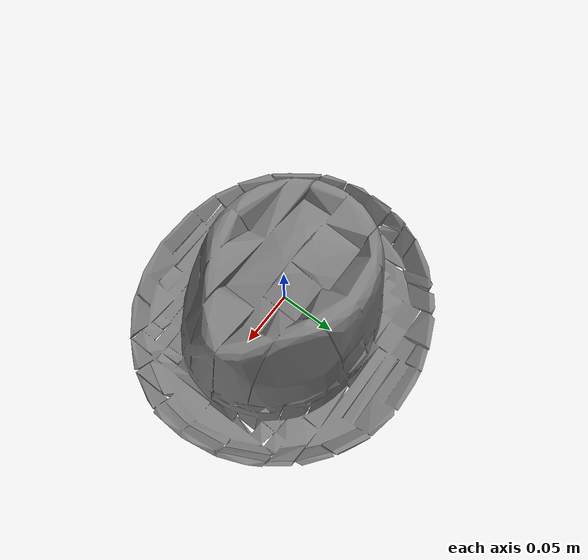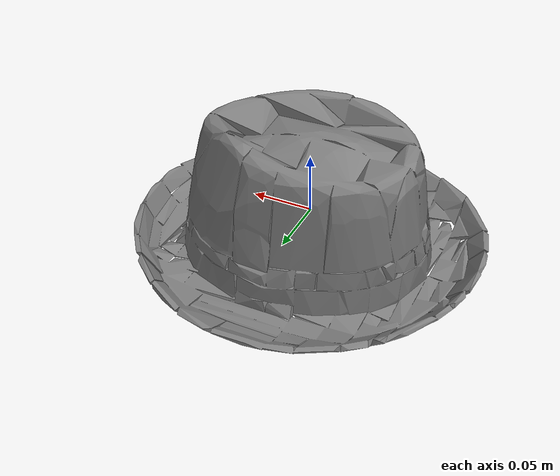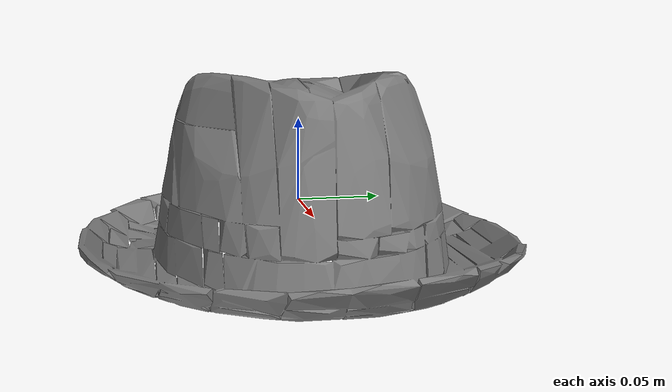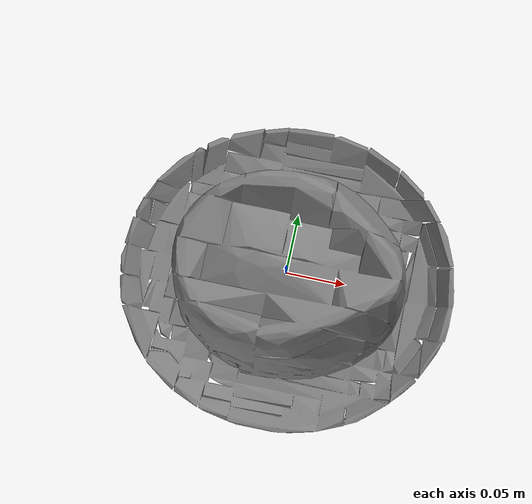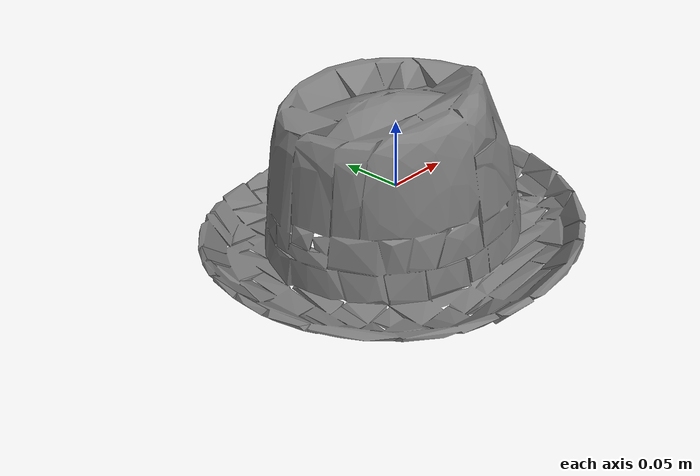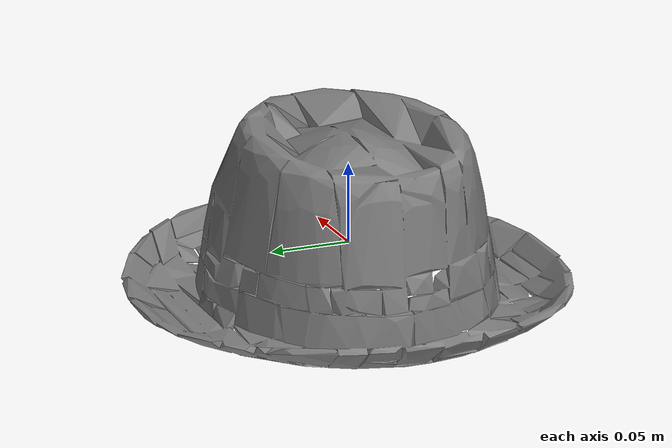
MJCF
<mujoco model="hat_Retail_Leadership_Summit_M">
  <default>
    <default class="visual">
      <geom group="2" type="mesh" contype="0" conaffinity="0" />
    </default>
    <default class="collision">
      <geom group="3" type="mesh" />
    </default>
  </default>
  <asset>
    <mesh file="hat_Retail_Leadership_Summit_M.stl" />
    <mesh file="hat_Retail_Leadership_Summit_M_collision_0.stl" />
    <mesh file="hat_Retail_Leadership_Summit_M_collision_1.stl" />
    <mesh file="hat_Retail_Leadership_Summit_M_collision_2.stl" />
    <mesh file="hat_Retail_Leadership_Summit_M_collision_3.stl" />
    <mesh file="hat_Retail_Leadership_Summit_M_collision_4.stl" />
    <mesh file="hat_Retail_Leadership_Summit_M_collision_5.stl" />
    <mesh file="hat_Retail_Leadership_Summit_M_collision_6.stl" />
    <mesh file="hat_Retail_Leadership_Summit_M_collision_7.stl" />
    <mesh file="hat_Retail_Leadership_Summit_M_collision_8.stl" />
    <mesh file="hat_Retail_Leadership_Summit_M_collision_9.stl" />
    <mesh file="hat_Retail_Leadership_Summit_M_collision_10.stl" />
    <mesh file="hat_Retail_Leadership_Summit_M_collision_11.stl" />
    <mesh file="hat_Retail_Leadership_Summit_M_collision_12.stl" />
    <mesh file="hat_Retail_Leadership_Summit_M_collision_13.stl" />
    <mesh file="hat_Retail_Leadership_Summit_M_collision_14.stl" />
    <mesh file="hat_Retail_Leadership_Summit_M_collision_15.stl" />
  </asset>
  <worldbody>
    <body name="hat_Retail_Leadership_Summit_M">
      <geom mesh="hat_Retail_Leadership_Summit_M" class="visual" />
      <geom mesh="hat_Retail_Leadership_Summit_M_collision_0" class="collision" />
      <geom mesh="hat_Retail_Leadership_Summit_M_collision_1" class="collision" />
      <geom mesh="hat_Retail_Leadership_Summit_M_collision_2" class="collision" />
      <geom mesh="hat_Retail_Leadership_Summit_M_collision_3" class="collision" />
      <geom mesh="hat_Retail_Leadership_Summit_M_collision_4" class="collision" />
      <geom mesh="hat_Retail_Leadership_Summit_M_collision_5" class="collision" />
      <geom mesh="hat_Retail_Leadership_Summit_M_collision_6" class="collision" />
      <geom mesh="hat_Retail_Leadership_Summit_M_collision_7" class="collision" />
      <geom mesh="hat_Retail_Leadership_Summit_M_collision_8" class="collision" />
      <geom mesh="hat_Retail_Leadership_Summit_M_collision_9" class="collision" />
      <geom mesh="hat_Retail_Leadership_Summit_M_collision_10" class="collision" />
      <geom mesh="hat_Retail_Leadership_Summit_M_collision_11" class="collision" />
      <geom mesh="hat_Retail_Leadership_Summit_M_collision_12" class="collision" />
      <geom mesh="hat_Retail_Leadership_Summit_M_collision_13" class="collision" />
      <geom mesh="hat_Retail_Leadership_Summit_M_collision_14" class="collision" />
      <geom mesh="hat_Retail_Leadership_Summit_M_collision_15" class="collision" />
    </body>
  </worldbody>
</mujoco>
